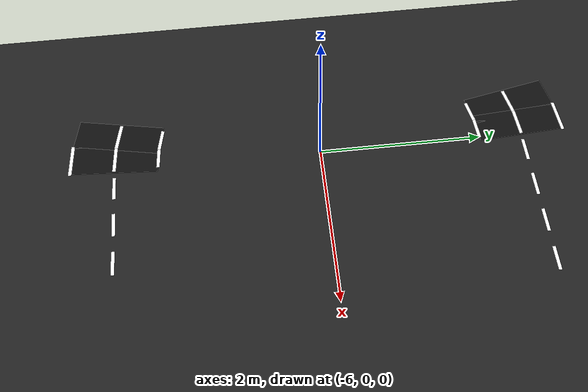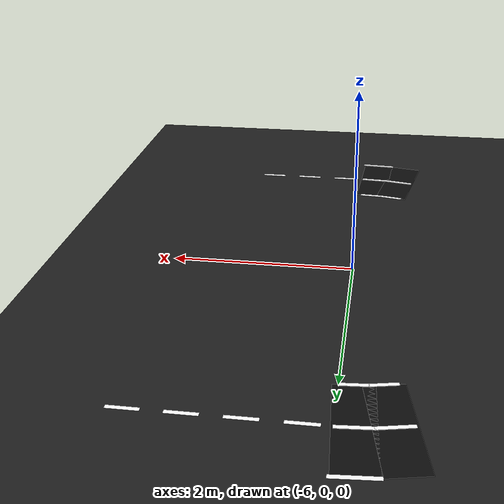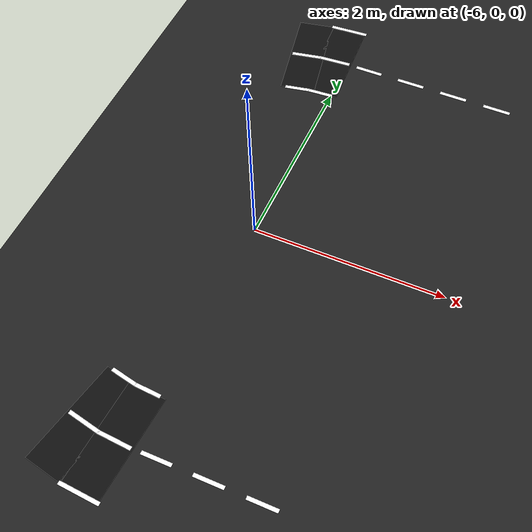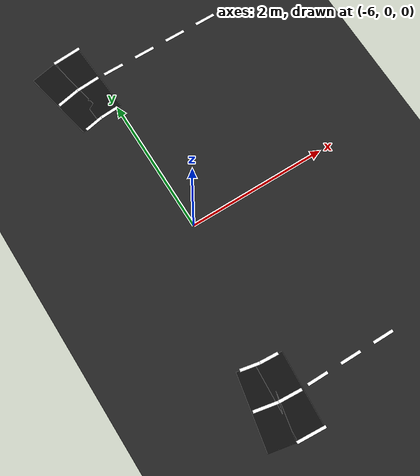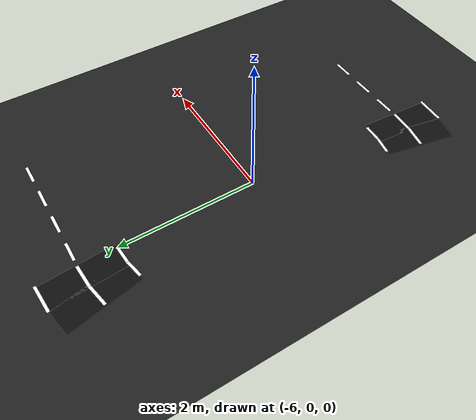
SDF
<sdf version="1.6">
 <world name="oval_lane_world">
  <model name="ground_plane">
   <static>true</static>
   <link name="link">
    <collision name="collision">
     <geometry><plane><normal>0 0 1</normal><size>200 200</size></plane></geometry>
     <surface><friction><ode><mu>1.0</mu><mu2>1.0</mu2></ode></friction></surface>
    </collision>
    <visual name="visual">
     <geometry><plane><normal>0 0 1</normal><size>200 200</size></plane></geometry>
     <material><ambient>0.10 0.10 0.10 1</ambient><diffuse>0.12 0.12 0.12 1</diffuse></material>
    </visual>
   </link>
  </model>
  <model name="dl_top_1_0">
   <static>true</static>
   <pose>-5.75000 2.53400 0.00700 0.0 0.0 0.00000</pose>
   <link name="link">
    <visual name="visual">
     <geometry><box><size>0.30000 0.04000 0.00400</size></box></geometry>
     <material>
      <ambient>1.000 1.000 1.000 1</ambient>
      <diffuse>1.000 1.000 1.000 1</diffuse>
      <specular>0.05 0.05 0.05 1</specular>
     </material>
    </visual>
   </link>
  </model>
  <model name="dl_bot_1_0">
   <static>true</static>
   <pose>-5.75000 -2.53400 0.00700 0.0 0.0 0.00000</pose>
   <link name="link">
    <visual name="visual">
     <geometry><box><size>0.30000 0.04000 0.00400</size></box></geometry>
     <material>
      <ambient>1.000 1.000 1.000 1</ambient>
      <diffuse>1.000 1.000 1.000 1</diffuse>
      <specular>0.05 0.05 0.05 1</specular>
     </material>
    </visual>
   </link>
  </model>
  <model name="dl_top_1_1">
   <static>true</static>
   <pose>-5.25000 2.53400 0.00700 0.0 0.0 0.00000</pose>
   <link name="link">
    <visual name="visual">
     <geometry><box><size>0.30000 0.04000 0.00400</size></box></geometry>
     <material>
      <ambient>1.000 1.000 1.000 1</ambient>
      <diffuse>1.000 1.000 1.000 1</diffuse>
      <specular>0.05 0.05 0.05 1</specular>
     </material>
    </visual>
   </link>
  </model>
  <model name="dl_bot_1_1">
   <static>true</static>
   <pose>-5.25000 -2.53400 0.00700 0.0 0.0 0.00000</pose>
   <link name="link">
    <visual name="visual">
     <geometry><box><size>0.30000 0.04000 0.00400</size></box></geometry>
     <material>
      <ambient>1.000 1.000 1.000 1</ambient>
      <diffuse>1.000 1.000 1.000 1</diffuse>
      <specular>0.05 0.05 0.05 1</specular>
     </material>
    </visual>
   </link>
  </model>
  <model name="dl_top_1_2">
   <static>true</static>
   <pose>-4.75000 2.53400 0.00700 0.0 0.0 0.00000</pose>
   <link name="link">
    <visual name="visual">
     <geometry><box><size>0.30000 0.04000 0.00400</size></box></geometry>
     <material>
      <ambient>1.000 1.000 1.000 1</ambient>
      <diffuse>1.000 1.000 1.000 1</diffuse>
      <specular>0.05 0.05 0.05 1</specular>
     </material>
    </visual>
   </link>
  </model>
  <model name="dl_bot_1_2">
   <static>true</static>
   <pose>-4.75000 -2.53400 0.00700 0.0 0.0 0.00000</pose>
   <link name="link">
    <visual name="visual">
     <geometry><box><size>0.30000 0.04000 0.00400</size></box></geometry>
     <material>
      <ambient>1.000 1.000 1.000 1</ambient>
      <diffuse>1.000 1.000 1.000 1</diffuse>
      <specular>0.05 0.05 0.05 1</specular>
     </material>
    </visual>
   </link>
  </model>
  <model name="dl_top_1_3">
   <static>true</static>
   <pose>-4.25000 2.53400 0.00700 0.0 0.0 0.00000</pose>
   <link name="link">
    <visual name="visual">
     <geometry><box><size>0.30000 0.04000 0.00400</size></box></geometry>
     <material>
      <ambient>1.000 1.000 1.000 1</ambient>
      <diffuse>1.000 1.000 1.000 1</diffuse>
      <specular>0.05 0.05 0.05 1</specular>
     </material>
    </visual>
   </link>
  </model>
  <model name="road_l_0">
   <static>true</static>
   <pose>-6.16573 2.52857 0.00250 0.0 0.0 3.20704</pose>
   <link name="link">
    <visual name="visual">
     <geometry><box><size>0.38284 1.06800 0.00500</size></box></geometry>
     <material>
      <ambient>0.030 0.030 0.030 1</ambient>
      <diffuse>0.050 0.050 0.050 1</diffuse>
      <specular>0.05 0.05 0.05 1</specular>
     </material>
    </visual>
   </link>
  </model>
  <model name="cl_l_0_0">
   <static>true</static>
   <pose>-6.13081 1.99572 0.00700 0.0 0.0 3.20704</pose>
   <link name="link">
    <visual name="visual">
     <geometry><box><size>0.27208 0.04000 0.00400</size></box></geometry>
     <material>
      <ambient>1.000 1.000 1.000 1</ambient>
      <diffuse>1.000 1.000 1.000 1</diffuse>
      <specular>0.05 0.05 0.05 1</specular>
     </material>
    </visual>
   </link>
  </model>
  <model name="cl_l_1_0">
   <static>true</static>
   <pose>-6.16573 2.52857 0.00700 0.0 0.0 3.20704</pose>
   <link name="link">
    <visual name="visual">
     <geometry><box><size>0.34472 0.04000 0.00400</size></box></geometry>
     <material>
      <ambient>1.000 1.000 1.000 1</ambient>
      <diffuse>1.000 1.000 1.000 1</diffuse>
      <specular>0.05 0.05 0.05 1</specular>
     </material>
    </visual>
   </link>
  </model>
  <model name="cl_l_2_0">
   <static>true</static>
   <pose>-6.20066 3.06143 0.00700 0.0 0.0 3.20704</pose>
   <link name="link">
    <visual name="visual">
     <geometry><box><size>0.41737 0.04000 0.00400</size></box></geometry>
     <material>
      <ambient>1.000 1.000 1.000 1</ambient>
      <diffuse>1.000 1.000 1.000 1</diffuse>
      <specular>0.05 0.05 0.05 1</specular>
     </material>
    </visual>
   </link>
  </model>
  <model name="road_l_1">
   <static>true</static>
   <pose>-6.49436 2.48531 0.00250 0.0 0.0 3.33794</pose>
   <link name="link">
    <visual name="visual">
     <geometry><box><size>0.38284 1.06800 0.00500</size></box></geometry>
     <material>
      <ambient>0.030 0.030 0.030 1</ambient>
      <diffuse>0.050 0.050 0.050 1</diffuse>
      <specular>0.05 0.05 0.05 1</specular>
     </material>
    </visual>
   </link>
  </model>
  <model name="cl_l_0_1">
   <static>true</static>
   <pose>-6.39018 1.96157 0.00700 0.0 0.0 3.33794</pose>
   <link name="link">
    <visual name="visual">
     <geometry><box><size>0.27208 0.04000 0.00400</size></box></geometry>
     <material>
      <ambient>1.000 1.000 1.000 1</ambient>
      <diffuse>1.000 1.000 1.000 1</diffuse>
      <specular>0.05 0.05 0.05 1</specular>
     </material>
    </visual>
   </link>
  </model>
  <model name="cl_l_1_1">
   <static>true</static>
   <pose>-6.49436 2.48531 0.00700 0.0 0.0 3.33794</pose>
   <link name="link">
    <visual name="visual">
     <geometry><box><size>0.34472 0.04000 0.00400</size></box></geometry>
     <material>
      <ambient>1.000 1.000 1.000 1</ambient>
      <diffuse>1.000 1.000 1.000 1</diffuse>
      <specular>0.05 0.05 0.05 1</specular>
     </material>
    </visual>
   </link>
  </model>
  <model name="road_l_22">
   <static>true</static>
   <pose>-6.49436 -2.48531 0.00250 0.0 0.0 6.08684</pose>
   <link name="link">
    <visual name="visual">
     <geometry><box><size>0.38284 1.06800 0.00500</size></box></geometry>
     <material>
      <ambient>0.030 0.030 0.030 1</ambient>
      <diffuse>0.050 0.050 0.050 1</diffuse>
      <specular>0.05 0.05 0.05 1</specular>
     </material>
    </visual>
   </link>
  </model>
  <model name="cl_l_0_22">
   <static>true</static>
   <pose>-6.39018 -1.96157 0.00700 0.0 0.0 6.08684</pose>
   <link name="link">
    <visual name="visual">
     <geometry><box><size>0.27208 0.04000 0.00400</size></box></geometry>
     <material>
      <ambient>1.000 1.000 1.000 1</ambient>
      <diffuse>1.000 1.000 1.000 1</diffuse>
      <specular>0.05 0.05 0.05 1</specular>
     </material>
    </visual>
   </link>
  </model>
  <model name="cl_l_1_22">
   <static>true</static>
   <pose>-6.49436 -2.48531 0.00700 0.0 0.0 6.08684</pose>
   <link name="link">
    <visual name="visual">
     <geometry><box><size>0.34472 0.04000 0.00400</size></box></geometry>
     <material>
      <ambient>1.000 1.000 1.000 1</ambient>
      <diffuse>1.000 1.000 1.000 1</diffuse>
      <specular>0.05 0.05 0.05 1</specular>
     </material>
    </visual>
   </link>
  </model>
  <model name="road_l_23">
   <static>true</static>
   <pose>-6.16573 -2.52857 0.00250 0.0 0.0 6.21774</pose>
   <link name="link">
    <visual name="visual">
     <geometry><box><size>0.38284 1.06800 0.00500</size></box></geometry>
     <material>
      <ambient>0.030 0.030 0.030 1</ambient>
      <diffuse>0.050 0.050 0.050 1</diffuse>
      <specular>0.05 0.05 0.05 1</specular>
     </material>
    </visual>
   </link>
  </model>
  <model name="cl_l_0_23">
   <static>true</static>
   <pose>-6.13081 -1.99572 0.00700 0.0 0.0 6.21774</pose>
   <link name="link">
    <visual name="visual">
     <geometry><box><size>0.27208 0.04000 0.00400</size></box></geometry>
     <material>
      <ambient>1.000 1.000 1.000 1</ambient>
      <diffuse>1.000 1.000 1.000 1</diffuse>
      <specular>0.05 0.05 0.05 1</specular>
     </material>
    </visual>
   </link>
  </model>
  <model name="cl_l_1_23">
   <static>true</static>
   <pose>-6.16573 -2.52857 0.00700 0.0 0.0 6.21774</pose>
   <link name="link">
    <visual name="visual">
     <geometry><box><size>0.34472 0.04000 0.00400</size></box></geometry>
     <material>
      <ambient>1.000 1.000 1.000 1</ambient>
      <diffuse>1.000 1.000 1.000 1</diffuse>
      <specular>0.05 0.05 0.05 1</specular>
     </material>
    </visual>
   </link>
  </model>
  <model name="cl_l_2_23">
   <static>true</static>
   <pose>-6.20066 -3.06143 0.00700 0.0 0.0 6.21774</pose>
   <link name="link">
    <visual name="visual">
     <geometry><box><size>0.41737 0.04000 0.00400</size></box></geometry>
     <material>
      <ambient>1.000 1.000 1.000 1</ambient>
      <diffuse>1.000 1.000 1.000 1</diffuse>
      <specular>0.05 0.05 0.05 1</specular>
     </material>
    </visual>
   </link>
  </model>
 </world>
</sdf>
